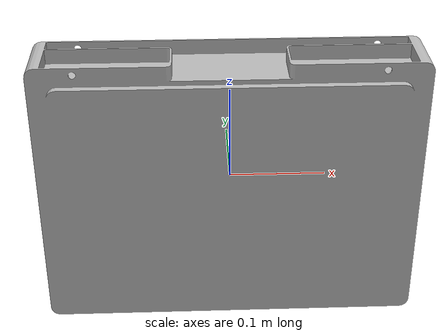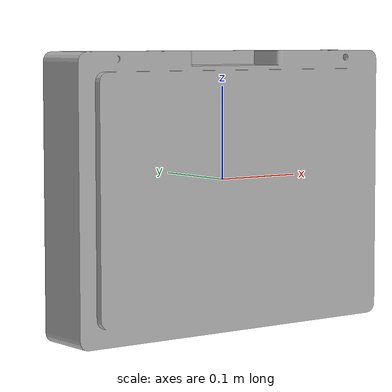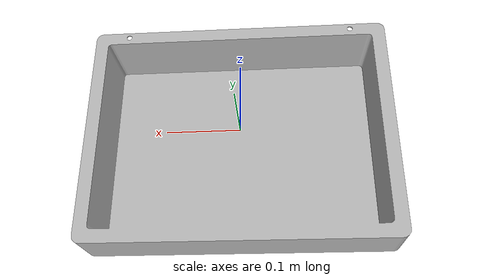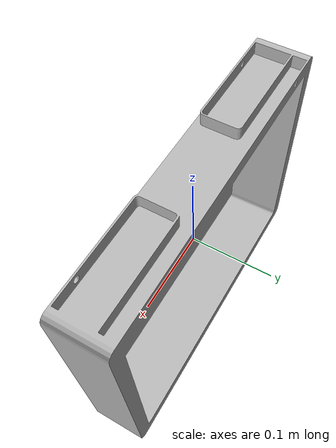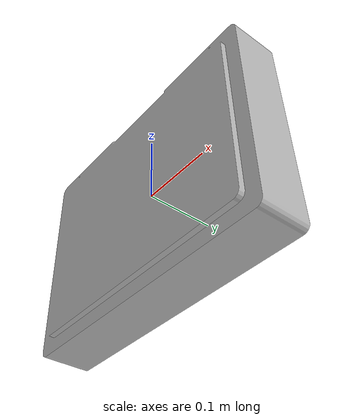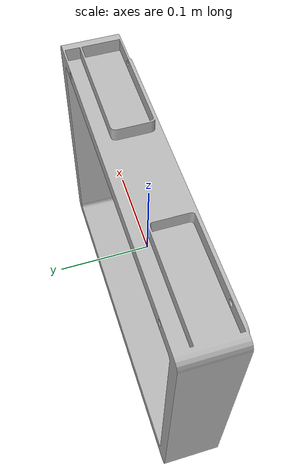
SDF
<?xml version="1.0" ?>
<sdf version="1.5">
  <model name="starting_bin">
    <static>false</static>
    <link name="link">
      <pose>0 0 0 0 0 0</pose>

      <!-- Mass and Inertia properties -->
      <inertial>
        <mass>1.0</mass> <!-- Adjust the mass to match your model -->
        <inertia>
          <!-- Adjust these values based on the actual physical properties of your model -->
          <ixx>0.1</ixx>
          <ixy>0.0</ixy>
          <ixz>0.0</ixz>
          <iyy>0.1</iyy>
          <iyz>0.0</iyz>
          <izz>0.1</izz>
        </inertia>
      </inertial>

      <!-- Collision properties -->
      <collision name="collision">
        <geometry>
          <mesh>
            <uri>model://bin/meshes/start_bin.obj</uri>
            <scale>1 1 1</scale>
          </mesh>
        </geometry>
      </collision>

      <!-- Visual properties -->
      <visual name="visual">
        <geometry>
          <mesh>
            <uri>model://bin/meshes/start_bin.obj</uri>
            <scale>1 1 1</scale>
          </mesh>
        </geometry>
      </visual>

      <!-- Additional physical properties like friction might be added here if needed -->
    </link>
  </model>
</sdf>
